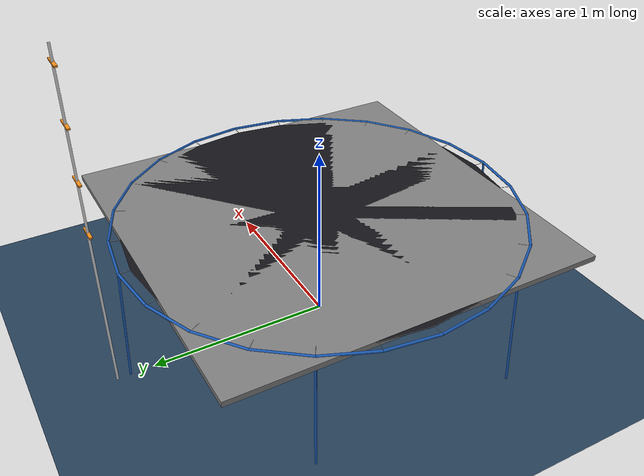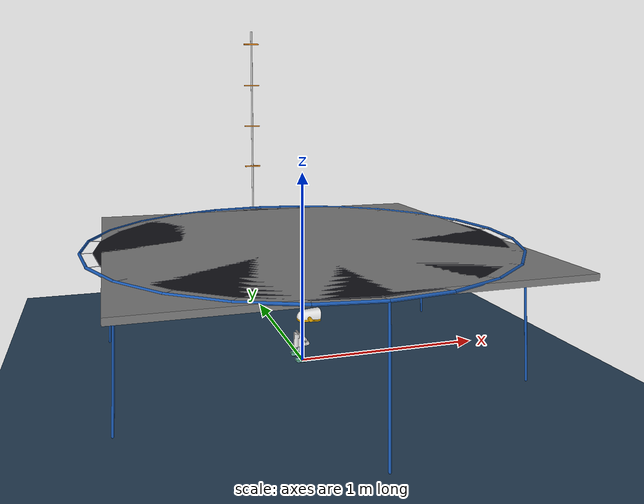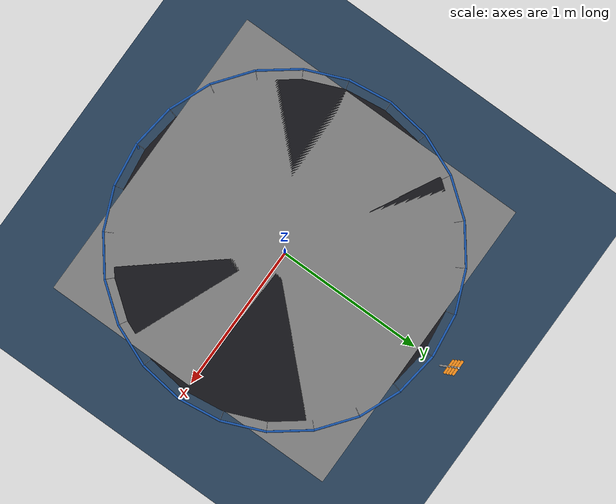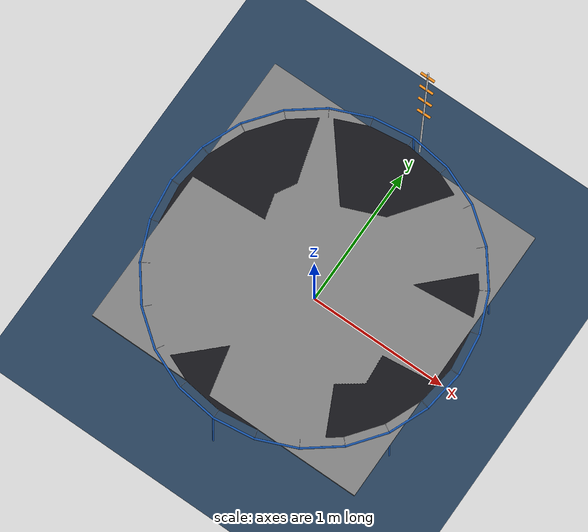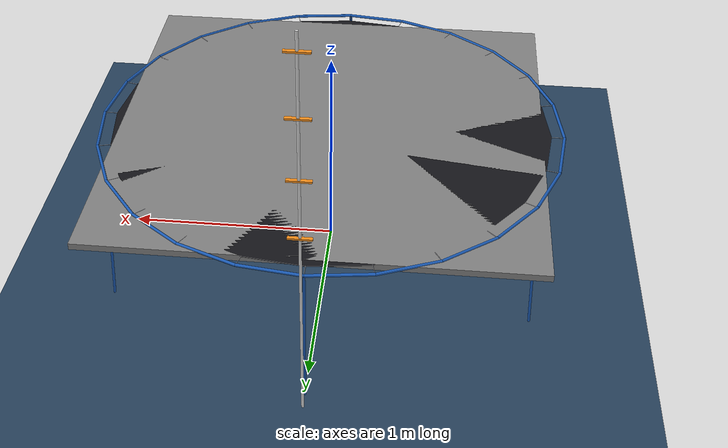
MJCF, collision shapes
<mujoco model="scene_trampoline">
    <!-- GENERATED by src/microduck_lab/tasks/trampoline/world.py (write_scene); do not edit.
         Stiffness and damping of bed_slide are set at load time from sag_mm and bounce. -->
    <include file="robot_allcollisions_boardfeet.xml" />

    <visual>
        <headlight diffuse="0.6 0.6 0.6" ambient="0.3 0.3 0.3" specular="0 0 0" />
        <rgba haze="0.15 0.25 0.35 1" />
        <global azimuth="160" elevation="-20" />
    </visual>

    <asset>
        <texture type="skybox" builtin="gradient" rgb1="0.3 0.5 0.7" rgb2="0 0 0" width="512" height="3072" />
        <texture type="2d" name="groundplane" builtin="checker" mark="edge" rgb1="0.2 0.3 0.4"
            rgb2="0.1 0.2 0.3" markrgb="0.8 0.8 0.8" width="300" height="300" />
        <material name="groundplane" texture="groundplane" texuniform="true" texrepeat="5 5" reflectance="0.2" />
    </asset>

    <worldbody>
        <light pos="0 0 3.5" dir="0 0 -1" directional="true" />
        <geom name="floor" size="0 0 0.05" pos="0 0 0" type="plane" material="groundplane" />
        <geom type="capsule" fromto="1.1000 0.0000 0.65 1.0625 0.2847 0.65" size="0.007" contype="0" conaffinity="0" rgba="0.10 0.35 0.70 1"/>
        <geom type="capsule" fromto="1.0625 0.2847 0.65 0.9526 0.5500 0.65" size="0.007" contype="0" conaffinity="0" rgba="0.10 0.35 0.70 1"/>
        <geom type="capsule" fromto="0.9526 0.5500 0.65 0.7778 0.7778 0.65" size="0.007" contype="0" conaffinity="0" rgba="0.10 0.35 0.70 1"/>
        <geom type="capsule" fromto="0.7778 0.7778 0.65 0.5500 0.9526 0.65" size="0.007" contype="0" conaffinity="0" rgba="0.10 0.35 0.70 1"/>
        <geom type="capsule" fromto="0.5500 0.9526 0.65 0.2847 1.0625 0.65" size="0.007" contype="0" conaffinity="0" rgba="0.10 0.35 0.70 1"/>
        <geom type="capsule" fromto="0.2847 1.0625 0.65 0.0000 1.1000 0.65" size="0.007" contype="0" conaffinity="0" rgba="0.10 0.35 0.70 1"/>
        <geom type="capsule" fromto="0.0000 1.1000 0.65 -0.2847 1.0625 0.65" size="0.007" contype="0" conaffinity="0" rgba="0.10 0.35 0.70 1"/>
        <geom type="capsule" fromto="-0.2847 1.0625 0.65 -0.5500 0.9526 0.65" size="0.007" contype="0" conaffinity="0" rgba="0.10 0.35 0.70 1"/>
        <geom type="capsule" fromto="-0.5500 0.9526 0.65 -0.7778 0.7778 0.65" size="0.007" contype="0" conaffinity="0" rgba="0.10 0.35 0.70 1"/>
        <geom type="capsule" fromto="-0.7778 0.7778 0.65 -0.9526 0.5500 0.65" size="0.007" contype="0" conaffinity="0" rgba="0.10 0.35 0.70 1"/>
        <geom type="capsule" fromto="-0.9526 0.5500 0.65 -1.0625 0.2847 0.65" size="0.007" contype="0" conaffinity="0" rgba="0.10 0.35 0.70 1"/>
        <geom type="capsule" fromto="-1.0625 0.2847 0.65 -1.1000 0.0000 0.65" size="0.007" contype="0" conaffinity="0" rgba="0.10 0.35 0.70 1"/>
        <geom type="capsule" fromto="-1.1000 0.0000 0.65 -1.0625 -0.2847 0.65" size="0.007" contype="0" conaffinity="0" rgba="0.10 0.35 0.70 1"/>
        <geom type="capsule" fromto="-1.0625 -0.2847 0.65 -0.9526 -0.5500 0.65" size="0.007" contype="0" conaffinity="0" rgba="0.10 0.35 0.70 1"/>
        <geom type="capsule" fromto="-0.9526 -0.5500 0.65 -0.7778 -0.7778 0.65" size="0.007" contype="0" conaffinity="0" rgba="0.10 0.35 0.70 1"/>
        <geom type="capsule" fromto="-0.7778 -0.7778 0.65 -0.5500 -0.9526 0.65" size="0.007" contype="0" conaffinity="0" rgba="0.10 0.35 0.70 1"/>
        <geom type="capsule" fromto="-0.5500 -0.9526 0.65 -0.2847 -1.0625 0.65" size="0.007" contype="0" conaffinity="0" rgba="0.10 0.35 0.70 1"/>
        <geom type="capsule" fromto="-0.2847 -1.0625 0.65 -0.0000 -1.1000 0.65" size="0.007" contype="0" conaffinity="0" rgba="0.10 0.35 0.70 1"/>
        <geom type="capsule" fromto="-0.0000 -1.1000 0.65 0.2847 -1.0625 0.65" size="0.007" contype="0" conaffinity="0" rgba="0.10 0.35 0.70 1"/>
        <geom type="capsule" fromto="0.2847 -1.0625 0.65 0.5500 -0.9526 0.65" size="0.007" contype="0" conaffinity="0" rgba="0.10 0.35 0.70 1"/>
        <geom type="capsule" fromto="0.5500 -0.9526 0.65 0.7778 -0.7778 0.65" size="0.007" contype="0" conaffinity="0" rgba="0.10 0.35 0.70 1"/>
        <geom type="capsule" fromto="0.7778 -0.7778 0.65 0.9526 -0.5500 0.65" size="0.007" contype="0" conaffinity="0" rgba="0.10 0.35 0.70 1"/>
        <geom type="capsule" fromto="0.9526 -0.5500 0.65 1.0625 -0.2847 0.65" size="0.007" contype="0" conaffinity="0" rgba="0.10 0.35 0.70 1"/>
        <geom type="capsule" fromto="1.0625 -0.2847 0.65 1.1000 -0.0000 0.65" size="0.007" contype="0" conaffinity="0" rgba="0.10 0.35 0.70 1"/>
        <geom type="capsule" fromto="0.9526 0.5500 0.65 0.9786 0.5650 0.004" size="0.006" contype="0" conaffinity="0" rgba="0.10 0.35 0.70 1"/>
        <geom type="capsule" fromto="0.0000 1.1000 0.65 0.0000 1.1300 0.004" size="0.006" contype="0" conaffinity="0" rgba="0.10 0.35 0.70 1"/>
        <geom type="capsule" fromto="-0.9526 0.5500 0.65 -0.9786 0.5650 0.004" size="0.006" contype="0" conaffinity="0" rgba="0.10 0.35 0.70 1"/>
        <geom type="capsule" fromto="-0.9526 -0.5500 0.65 -0.9786 -0.5650 0.004" size="0.006" contype="0" conaffinity="0" rgba="0.10 0.35 0.70 1"/>
        <geom type="capsule" fromto="-0.0000 -1.1000 0.65 -0.0000 -1.1300 0.004" size="0.006" contype="0" conaffinity="0" rgba="0.10 0.35 0.70 1"/>
        <geom type="capsule" fromto="0.9526 -0.5500 0.65 0.9786 -0.5650 0.004" size="0.006" contype="0" conaffinity="0" rgba="0.10 0.35 0.70 1"/>
        <site name="ring_0" pos="1.0940 0.0000 0.65" size="0.001"/>
        <site name="ring_1" pos="1.0567 0.2831 0.65" size="0.001"/>
        <site name="ring_2" pos="0.9474 0.5470 0.65" size="0.001"/>
        <site name="ring_3" pos="0.7736 0.7736 0.65" size="0.001"/>
        <site name="ring_4" pos="0.5470 0.9474 0.65" size="0.001"/>
        <site name="ring_5" pos="0.2831 1.0567 0.65" size="0.001"/>
        <site name="ring_6" pos="0.0000 1.0940 0.65" size="0.001"/>
        <site name="ring_7" pos="-0.2831 1.0567 0.65" size="0.001"/>
        <site name="ring_8" pos="-0.5470 0.9474 0.65" size="0.001"/>
        <site name="ring_9" pos="-0.7736 0.7736 0.65" size="0.001"/>
        <site name="ring_10" pos="-0.9474 0.5470 0.65" size="0.001"/>
        <site name="ring_11" pos="-1.0567 0.2831 0.65" size="0.001"/>
        <site name="ring_12" pos="-1.0940 0.0000 0.65" size="0.001"/>
        <site name="ring_13" pos="-1.0567 -0.2831 0.65" size="0.001"/>
        <site name="ring_14" pos="-0.9474 -0.5470 0.65" size="0.001"/>
        <site name="ring_15" pos="-0.7736 -0.7736 0.65" size="0.001"/>
        <site name="ring_16" pos="-0.5470 -0.9474 0.65" size="0.001"/>
        <site name="ring_17" pos="-0.2831 -1.0567 0.65" size="0.001"/>
        <site name="ring_18" pos="-0.0000 -1.0940 0.65" size="0.001"/>
        <site name="ring_19" pos="0.2831 -1.0567 0.65" size="0.001"/>
        <site name="ring_20" pos="0.5470 -0.9474 0.65" size="0.001"/>
        <site name="ring_21" pos="0.7736 -0.7736 0.65" size="0.001"/>
        <site name="ring_22" pos="0.9474 -0.5470 0.65" size="0.001"/>
        <site name="ring_23" pos="1.0567 -0.2831 0.65" size="0.001"/>
        <geom type="cylinder" fromto="0.0 1.2000000000000002 0 0.0 1.2000000000000002 1.820" size="0.006" contype="0" conaffinity="0" rgba="0.85 0.85 0.85 1"/>
        <geom type="box" pos="0.0 1.2000000000000002 0.922" size="0.05 0.008 0.004" contype="0" conaffinity="0" rgba="0.95 0.55 0.10 1"/>
        <geom type="box" pos="0.0 1.2000000000000002 1.194" size="0.05 0.008 0.004" contype="0" conaffinity="0" rgba="0.95 0.55 0.10 1"/>
        <geom type="box" pos="0.0 1.2000000000000002 1.466" size="0.05 0.008 0.004" contype="0" conaffinity="0" rgba="0.95 0.55 0.10 1"/>
        <geom type="box" pos="0.0 1.2000000000000002 1.738" size="0.05 0.008 0.004" contype="0" conaffinity="0" rgba="0.95 0.55 0.10 1"/>
        <body name="bed" pos="0 0 0.65" gravcomp="1">
            <joint name="bed_slide" type="slide" axis="0 0 1" limited="true" range="-0.6 0.1" />
            <inertial pos="0 0 -0.004" mass="0.03" diaginertia="2e-4 2e-4 4e-4" />
            <geom name="bed" type="box" size="1.0 1.0 0.015" pos="0 0 -0.015" group="3"
                friction="1 0.005 0.0001" solref="0.002 1" solimp="0.99 0.999 0.001" priority="1" />
            <geom name="bed_visual" type="cylinder" size="1.04 0.002" pos="0 0 -0.002"
                contype="0" conaffinity="0" rgba="0.08 0.08 0.10 1" />
            <site name="edge_0" pos="1.0380 0.0000 0" size="0.001"/>
        <site name="edge_1" pos="1.0026 0.2687 0" size="0.001"/>
        <site name="edge_2" pos="0.8989 0.5190 0" size="0.001"/>
        <site name="edge_3" pos="0.7340 0.7340 0" size="0.001"/>
        <site name="edge_4" pos="0.5190 0.8989 0" size="0.001"/>
        <site name="edge_5" pos="0.2687 1.0026 0" size="0.001"/>
        <site name="edge_6" pos="0.0000 1.0380 0" size="0.001"/>
        <site name="edge_7" pos="-0.2687 1.0026 0" size="0.001"/>
        <site name="edge_8" pos="-0.5190 0.8989 0" size="0.001"/>
        <site name="edge_9" pos="-0.7340 0.7340 0" size="0.001"/>
        <site name="edge_10" pos="-0.8989 0.5190 0" size="0.001"/>
        <site name="edge_11" pos="-1.0026 0.2687 0" size="0.001"/>
        <site name="edge_12" pos="-1.0380 0.0000 0" size="0.001"/>
        <site name="edge_13" pos="-1.0026 -0.2687 0" size="0.001"/>
        <site name="edge_14" pos="-0.8989 -0.5190 0" size="0.001"/>
        <site name="edge_15" pos="-0.7340 -0.7340 0" size="0.001"/>
        <site name="edge_16" pos="-0.5190 -0.8989 0" size="0.001"/>
        <site name="edge_17" pos="-0.2687 -1.0026 0" size="0.001"/>
        <site name="edge_18" pos="-0.0000 -1.0380 0" size="0.001"/>
        <site name="edge_19" pos="0.2687 -1.0026 0" size="0.001"/>
        <site name="edge_20" pos="0.5190 -0.8989 0" size="0.001"/>
        <site name="edge_21" pos="0.7340 -0.7340 0" size="0.001"/>
        <site name="edge_22" pos="0.8989 -0.5190 0" size="0.001"/>
        <site name="edge_23" pos="1.0026 -0.2687 0" size="0.001"/>
        </body>
    </worldbody>

    <tendon>
        <spatial width="0.0012" rgba="0.75 0.75 0.78 1"><site site="ring_0"/><site site="edge_0"/></spatial>
        <spatial width="0.0012" rgba="0.75 0.75 0.78 1"><site site="ring_1"/><site site="edge_1"/></spatial>
        <spatial width="0.0012" rgba="0.75 0.75 0.78 1"><site site="ring_2"/><site site="edge_2"/></spatial>
        <spatial width="0.0012" rgba="0.75 0.75 0.78 1"><site site="ring_3"/><site site="edge_3"/></spatial>
        <spatial width="0.0012" rgba="0.75 0.75 0.78 1"><site site="ring_4"/><site site="edge_4"/></spatial>
        <spatial width="0.0012" rgba="0.75 0.75 0.78 1"><site site="ring_5"/><site site="edge_5"/></spatial>
        <spatial width="0.0012" rgba="0.75 0.75 0.78 1"><site site="ring_6"/><site site="edge_6"/></spatial>
        <spatial width="0.0012" rgba="0.75 0.75 0.78 1"><site site="ring_7"/><site site="edge_7"/></spatial>
        <spatial width="0.0012" rgba="0.75 0.75 0.78 1"><site site="ring_8"/><site site="edge_8"/></spatial>
        <spatial width="0.0012" rgba="0.75 0.75 0.78 1"><site site="ring_9"/><site site="edge_9"/></spatial>
        <spatial width="0.0012" rgba="0.75 0.75 0.78 1"><site site="ring_10"/><site site="edge_10"/></spatial>
        <spatial width="0.0012" rgba="0.75 0.75 0.78 1"><site site="ring_11"/><site site="edge_11"/></spatial>
        <spatial width="0.0012" rgba="0.75 0.75 0.78 1"><site site="ring_12"/><site site="edge_12"/></spatial>
        <spatial width="0.0012" rgba="0.75 0.75 0.78 1"><site site="ring_13"/><site site="edge_13"/></spatial>
        <spatial width="0.0012" rgba="0.75 0.75 0.78 1"><site site="ring_14"/><site site="edge_14"/></spatial>
        <spatial width="0.0012" rgba="0.75 0.75 0.78 1"><site site="ring_15"/><site site="edge_15"/></spatial>
        <spatial width="0.0012" rgba="0.75 0.75 0.78 1"><site site="ring_16"/><site site="edge_16"/></spatial>
        <spatial width="0.0012" rgba="0.75 0.75 0.78 1"><site site="ring_17"/><site site="edge_17"/></spatial>
        <spatial width="0.0012" rgba="0.75 0.75 0.78 1"><site site="ring_18"/><site site="edge_18"/></spatial>
        <spatial width="0.0012" rgba="0.75 0.75 0.78 1"><site site="ring_19"/><site site="edge_19"/></spatial>
        <spatial width="0.0012" rgba="0.75 0.75 0.78 1"><site site="ring_20"/><site site="edge_20"/></spatial>
        <spatial width="0.0012" rgba="0.75 0.75 0.78 1"><site site="ring_21"/><site site="edge_21"/></spatial>
        <spatial width="0.0012" rgba="0.75 0.75 0.78 1"><site site="ring_22"/><site site="edge_22"/></spatial>
        <spatial width="0.0012" rgba="0.75 0.75 0.78 1"><site site="ring_23"/><site site="edge_23"/></spatial>
    </tendon>

    <contact>
        <exclude body1="world" body2="bed" />
        <exclude body1="ankle_left" body2="bed" />
        <exclude body1="ankle_right" body2="bed" />
        <pair geom1="left_foot_box" geom2="bed" friction="1 1 0.005 0.0001 0.0001" solref="0.002 1" solimp="0.99 0.999 0.001" />
        <pair geom1="right_foot_box" geom2="bed" friction="1 1 0.005 0.0001 0.0001" solref="0.002 1" solimp="0.99 0.999 0.001" />
    </contact>
</mujoco>

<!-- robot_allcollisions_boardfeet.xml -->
<!-- Generated using onshape-to-robot -->
<!-- Onshape https://cad.onshape.com/documents/804927696f06d877f3f1803e/w/5b75db19292e71970de02dee/e/ef6e972847fec8d82570b35e -->
<!-- GENERATED by scripts/task_balance_board.py (ensure_robot_variant) from robot_allcollisions.xml: adds left_foot_box / right_foot_box; do not edit. -->
<mujoco model="microduck">
  <compiler angle="radian" meshdir="../../mjlab_microduck/robot/microduck/assets" autolimits="true"/>
  <default>
    <default class="microduck">
      <joint frictionloss="0.1" armature="0.005"/>
      <position kp="50" dampratio="1"/>
      <default class="visual">
        <geom type="mesh" contype="0" conaffinity="0" group="2"/>
      </default>
      <default class="collision">
        <geom group="3"/>
      </default>
    </default>
  </default>
  <!-- Additional joints_properties.xml -->
  <default>
    <default class="perfect_actuator">
      <geom contype="0" conaffinity="0"/>
      <joint damping="0.15" frictionloss="0.1" armature="0.001"/>
      <position kp="10.0" kv="0.1" forcerange="-20.0 20.0"/>
    </default>
    <default class="chosen_actuator_old">
      <geom contype="0" conaffinity="0"/>
      <joint damping="0.048" frictionloss="0.006" armature="0.002"/>
      <position kp="0.52" kv="0.0" forcerange="-0.91 0.91" ctrlrange="-10.0 10.0"/>
    </default>
    <default class="chosen_actuator_new">
      <!-- removing contaminated data -->
      <geom contype="0" conaffinity="0"/>
      <joint damping="0.041" frictionloss="0.032" armature="0.002"/>
      <position kp="0.386" kv="0.0" forcerange="-0.67 0.67" ctrlrange="-10.0 10.0"/>
    </default>
    <default class="chosen_actuator_antoine">
      <geom contype="0" conaffinity="0"/>
      <joint damping="0.044" frictionloss="0.013" armature="0.0017"/>
      <position kp="0.43" kv="0.0" forcerange="-0.75 0.75" ctrlrange="-10.0 10.0"/>
    </default>
    <default class="chosen_actuator">
      <!-- marc -->
      <geom contype="0" conaffinity="0"/>
      <joint damping="0.053" frictionloss="0.0048" armature="0.0018"/>
      <!-- 200 kp -->
      <position kp="0.55" kv="0.0" forcerange="-0.96 0.96" ctrlrange="-10.0 10.0"/>
      <!-- 125 kp -->
    </default>
    <default class="passive_wheel">
      <geom contype="0" conaffinity="0"/>
      <joint damping="0.0" frictionloss="0.0" armature="0.0001"/>
    </default>
    <default class="passive_joint">
      <geom contype="0" conaffinity="0"/>
      <joint damping="0.0" frictionloss="0.0" armature="0.0001"/>
    </default>
  </default>
  <!-- Additional sensors.xml -->
  <sensor>
    <framequat name="orientation" objtype="site" noise="0.001" objname="imu"/>
    <gyro name="angular-velocity" site="imu" noise="0.005"/>
    <gyro name="imu_ang_vel" site="imu"/>
    <velocimeter name="imu_lin_vel" site="imu"/>
    <accelerometer name="imu_accel" site="imu"/>
    <subtreeangmom name="root_angmom" body="trunk_base"/>
  </sensor>
  <!-- Additional additional.xml -->
  <default>
    <default class="self_collision_only">
      <geom group="3" contype="2" conaffinity="2"/>
    </default>
    <equality solref="0.002 1" solimp="0.99 0.999 0.0005 0.5 2"/>
  </default>
  <!-- Jaw collision mesh overlaps the bottom head shell by ~2cm because the closed -->
  <!-- loop linkage positions it inside the head. Without these excludes the -->
  <!-- self-collision sensor reports a constant 2 contacts, giving a -->
  <!-- permanent ~-2.0 reward penalty in the standup env. -->
  <worldbody>
    <!-- Link trunk_base -->
    <body name="trunk_base" pos="0 0 0.12" quat="1 0 0 0" childclass="microduck">
      <freejoint name="trunk_base_freejoint"/>
      <inertial pos="-0.0226332 -2.70828e-05 0.00280064" mass="0.199224" fullinertia="0.000123975 0.000145931 0.000115351 7.1651e-08 -2.06915e-05 1.32429e-07"/>
      <!-- Part seeed_bearing__configuration__22x16x4 -->
      <geom type="mesh" class="visual" pos="0.006 0.0175 -0.005" quat="1 -0 -0 0" mesh="seeed_bearing__configuration__22x16x4" material="seeed_bearing__configuration__22x16x4_material"/>
      <!-- Part right_shell -->
      <geom type="mesh" class="visual" pos="0.004 -0.0005 -0.0175" quat="0.707107 -0 -0 0.707107" mesh="right_shell" material="right_shell_material"/>
      <!-- Part banana_pcb_locker -->
      <geom type="mesh" class="visual" pos="0.0042 -0 -0.0175215" quat="0.707107 -0 0 0.707107" mesh="banana_pcb_locker" material="banana_pcb_locker_material"/>
      <!-- Part trunk_base -->
      <geom type="mesh" class="visual" pos="0.004 -0 -0.0175" quat="0.707107 -0 -0 0.707107" mesh="trunk_base" material="trunk_base_material"/>
      <!-- Part xl330 -->
      <geom type="mesh" class="visual" pos="0.006 0.0175 0.0115" quat="0 0.707107 -0 0.707107" mesh="xl330" material="xl330_material"/>
      <!-- Part power_support -->
      <geom type="mesh" class="visual" pos="0.004 -0 -0.0175215" quat="0.707107 -0 0 0.707107" mesh="power_support" material="power_support_material"/>
      <geom type="mesh" class="self_collision_only" pos="0.004 -0 -0.0175215" quat="0.707107 -0 0 0.707107" mesh="power_support" material="power_support_material"/>
      <!-- Part np_f970 -->
      <geom type="mesh" class="visual" pos="-0.0359693 0 -0.00385049" quat="0.00617059 0.70708 -0.70708 -0.00617059" mesh="np_f970" material="np_f970_material"/>
      <geom type="mesh" class="collision" pos="-0.0359693 0 -0.00385049" quat="0.00617059 0.70708 -0.70708 -0.00617059" mesh="np_f970" material="np_f970_material"/>
      <!-- Part xl330_2 -->
      <geom type="mesh" class="visual" pos="0.006 -0.0175 0.0115" quat="0 0.707107 -0 0.707107" mesh="xl330" material="xl330_material"/>
      <!-- Part left_shell -->
      <geom type="mesh" class="visual" pos="0.004 -0 -0.0175785" quat="0.707107 0 -0 0.707107" mesh="left_shell" material="left_shell_material"/>
      <!-- Part seeed_bearing__configuration__22x16x4_2 -->
      <geom type="mesh" class="visual" pos="0.006 -0.0175 -0.005" quat="1 -0 -0 0" mesh="seeed_bearing__configuration__22x16x4" material="seeed_bearing__configuration__22x16x4_material"/>
      <!-- Frame imu -->
      <site group="3" name="imu" pos="-0.021 6.64098e-05 -0.0146984" quat="1 -0 -0 0"/>
      <!-- Link yaw2roll -->
      <body name="yaw2roll" pos="0.006 0.0175 -0.005" quat="0 -0.707107 -0.707107 -0">
        <!-- Joint from trunk_base to yaw2roll -->
        <joint axis="0 0 1" name="left_hip_yaw" type="hinge" range="-0.4363323129985824 0.5235987755982988" class="chosen_actuator"/>
        <inertial pos="-8.8e-11 0.00099414 0.0168917" mass="0.0230406" fullinertia="4.1964e-06 3.41752e-06 2.3265e-06 -0 -0 -5.0881e-08"/>
        <!-- Part yaw2roll -->
        <geom type="mesh" class="visual" pos="-0.0175 -0.002 0.0125" quat="0 1 0 0" mesh="yaw2roll" material="yaw2roll_material"/>
        <!-- Part xl330_3 -->
        <geom type="mesh" class="visual" pos="-0 0 0.0125" quat="0 -0.707107 0.707107 -0" mesh="xl330" material="xl330_material"/>
        <!-- Part seeed_bearing__configuration__22x16x4_3 -->
        <geom type="mesh" class="visual" pos="-0 0.0165 0.0125" quat="0.5 0.5 0.5 -0.5" mesh="seeed_bearing__configuration__22x16x4" material="seeed_bearing__configuration__22x16x4_material"/>
        <!-- Part bearing_roll -->
        <geom type="mesh" class="visual" pos="-0.0175 -0.002 0.0125" quat="0 -1 -0 -0" mesh="bearing_roll" material="bearing_roll_material"/>
        <!-- Link hip_l -->
        <body name="hip_l" pos="0 0.0165 0.0125" quat="0.707107 -0.707107 -0 -0">
          <!-- Joint from yaw2roll to hip_l -->
          <joint axis="0 0 1" name="left_hip_roll" type="hinge" range="-0.3839724354387525 0.3839724354387525" class="chosen_actuator"/>
          <inertial pos="0.014815 1.6179e-08 -0.00829992" mass="0.00618934" fullinertia="8.60626e-07 1.15753e-06 6.51588e-07 1e-12 3.89882e-07 -1e-12"/>
          <!-- Part seeed_bearing__configuration__22x16x4_4 -->
          <geom type="mesh" class="visual" pos="0.021 0 -0.0185" quat="0.5 0.5 0.5 0.5" mesh="seeed_bearing__configuration__22x16x4" material="seeed_bearing__configuration__22x16x4_material"/>
          <!-- Part hip_l -->
          <geom type="mesh" class="visual" pos="-0.0175 0 -0.0185" quat="0.707107 -0.707107 0 -0" mesh="hip_l" material="hip_l_material"/>
          <geom type="mesh" class="collision" pos="-0.0175 0 -0.0185" quat="0.707107 -0.707107 0 -0" mesh="hip_l" material="hip_l_material"/>
          <!-- Link upper_leg_left -->
          <body name="upper_leg_left" pos="0.025 0 -0.0185" quat="0.5 -0.5 0.5 -0.5">
            <!-- Joint from hip_l to upper_leg_left -->
            <joint axis="0 0 1" name="left_hip_pitch" type="hinge" range="-1.570796326795005 1.5707963267947882" class="chosen_actuator"/>
            <inertial pos="0.006766 0.0228838 0.0134531" mass="0.0482067" fullinertia="1.68753e-05 1.03691e-05 1.98269e-05 -4.41852e-06 2.27982e-07 3.89298e-07"/>
            <!-- Part upper_leg_left -->
            <geom type="mesh" class="visual" pos="-0 -0 -0.0425" quat="0.5 -0.5 -0.5 -0.5" mesh="upper_leg_left" material="upper_leg_left_material"/>
            <!-- Part xl330_4 -->
            <geom type="mesh" class="visual" pos="0.022 0.0357771 0.0125" quat="0 -0.707107 -0 -0.707107" mesh="xl330" material="xl330_material"/>
            <!-- Part upper_leg_rigidity_plate -->
            <geom type="mesh" class="visual" pos="0 -0 -0.0425" quat="0.5 -0.5 -0.5 -0.5" mesh="upper_leg_rigidity_plate" material="upper_leg_rigidity_plate_material"/>
            <!-- Part seeed_bearing__configuration__22x16x4_5 -->
            <geom type="mesh" class="visual" pos="0.022 0.0357771 -0.004" quat="0 0 0 1" mesh="seeed_bearing__configuration__22x16x4" material="seeed_bearing__configuration__22x16x4_material"/>
            <!-- Part xl330_5 -->
            <geom type="mesh" class="visual" pos="-0 -0 0.0125" quat="0.5 0.5 -0.5 0.5" mesh="xl330" material="xl330_material"/>
            <!-- Link leg -->
            <body name="leg" pos="0.022 0.0357771 -0.004" quat="0 0.707107 0.707107 0">
              <!-- Joint from upper_leg_left to leg -->
              <joint axis="0 0 1" name="left_knee" type="hinge" range="-1.570796326795012 1.570796326794781" class="chosen_actuator"/>
              <inertial pos="-1.52e-10 0.0318937 -0.00953505" mass="0.0215844" fullinertia="5.25056e-06 2.15507e-06 4.33925e-06 -1e-12 0 7.65005e-07"/>
              <!-- Part leg -->
              <geom type="mesh" class="visual" pos="-0.022 0.0357771 0.0385" quat="0.5 0.5 0.5 -0.5" mesh="leg" material="leg_material"/>
              <geom type="mesh" class="collision" pos="-0.022 0.0357771 0.0385" quat="0.5 0.5 0.5 -0.5" mesh="leg" material="leg_material"/>
              <!-- Part xl330_6 -->
              <geom type="mesh" class="visual" pos="0 0.042 -0.0115" quat="0.5 -0.5 -0.5 -0.5" mesh="xl330" material="xl330_material"/>
              <!-- Link ankle_left -->
              <body name="ankle_left" pos="0 0.042 -0.026" quat="0 1 -0 0">
                <!-- Joint from leg to ankle_left -->
                <joint axis="0 0 1" name="left_ankle" type="hinge" range="-1.5707963267949019 1.5707963267948912" class="chosen_actuator"/>
                <inertial pos="-0.00615738 -0.0137483 -0.0156586" mass="0.0300246" fullinertia="5.91525e-06 1.11534e-05 7.74015e-06 -2.0535e-07 8.2152e-08 5.6714e-08"/>
                <!-- Part sole_left -->
                <geom type="mesh" class="visual" pos="-0.022 0.00622291 -0.0647" quat="0.5 -0.5 -0.5 -0.5" mesh="sole_left" material="sole_left_material"/>
                <geom type="mesh" name="left_foot_collision" class="collision" pos="-0.022 0.00622291 -0.0647" quat="0.5 -0.5 -0.5 -0.5" mesh="sole_left" material="sole_left_material"/>
                <geom name="left_foot_box" type="box" size="0.0228 0.0170 0.0030" pos="-0.00699 -0.02088 -0.01430" quat="0.000000 0.000000 0.737289 0.675578" contype="0" conaffinity="0" group="3" rgba="0.2 0.8 0.2 0.4"/>
                <!-- Part foot_left -->
                <geom type="mesh" class="visual" pos="-0.022 0.00622291 -0.0647" quat="0.5 -0.5 -0.5 -0.5" mesh="foot_left" material="foot_left_material"/>
                <!-- Part seeed_bearing__configuration_default -->
                <geom type="mesh" class="visual" pos="0 0 -0.0322" quat="0 0 -0 1" mesh="seeed_bearing__configuration_default" material="seeed_bearing__configuration_default_material"/>
                <!-- Part ankle_left -->
                <geom type="mesh" class="visual" pos="-0.022 0.00622291 -0.0647" quat="0.5 -0.5 -0.5 -0.5" mesh="ankle_left" material="ankle_left_material"/>
                <!-- Frame left_foot -->
                <site group="3" name="left_foot" pos="-0 -0.0238146 -0.0140852" quat="0 0 0.707107 0.707107"/>
              </body>
            </body>
          </body>
        </body>
      </body>
      <!-- Link neck -->
      <body name="neck" pos="0.026 0.0145 0.0324215" quat="0 0 0.707107 -0.707107">
        <!-- Joint from trunk_base to neck -->
        <joint axis="0 0 1" name="neck_pitch" type="hinge" range="-1.5707963267948966 1.0471975511965976" class="chosen_actuator"/>
        <inertial pos="0 -0.025 0.0141665" mass="0.0368414" fullinertia="1.72925e-05 3.12694e-06 1.63707e-05 0 0 0"/>
        <!-- Part neck -->
        <geom type="mesh" class="visual" pos="0.022 0.05 0.028" quat="0.5 0.5 0.5 -0.5" mesh="neck" material="neck_material"/>
        <!-- Part xl330_7 -->
        <geom type="mesh" class="visual" pos="0 0 0.0145" quat="0.5 -0.5 -0.5 -0.5" mesh="xl330" material="xl330_material"/>
        <!-- Part xl330_8 -->
        <geom type="mesh" class="visual" pos="0 -0.05 0.0145" quat="0.5 0.5 -0.5 0.5" mesh="xl330" material="xl330_material"/>
        <!-- Part neck_2 -->
        <geom type="mesh" class="visual" pos="0.022 0.05 0.003" quat="0.5 0.5 0.5 -0.5" mesh="neck" material="neck_material"/>
        <!-- Link neck_pitch -->
        <body name="neck_pitch" pos="0 -0.05 -0" quat="0 1 0 0">
          <!-- Joint from neck to neck_pitch -->
          <joint axis="0 0 1" name="head_pitch" type="hinge" range="-1.5707963267948974 1.5707963267948957" class="chosen_actuator"/>
          <inertial pos="-6.533e-09 0.0116641 -0.0145" mass="0.00572" fullinertia="1.09186e-06 9.66855e-07 5.12111e-07 0 0 0"/>
          <!-- Part neck_pitch -->
          <geom type="mesh" class="visual" pos="-0 0.0287931 -0.0145" quat="0.5 -0.5 -0.5 -0.5" mesh="neck_pitch" material="neck_pitch_material"/>
          <!-- Part seeed_bearing__configuration__22x16x4_6 -->
          <geom type="mesh" class="visual" pos="-0 0.0207931 -0.0145" quat="0.707107 0.707107 0 0" mesh="seeed_bearing__configuration__22x16x4" material="seeed_bearing__configuration__22x16x4_material"/>
          <!-- Link yaw_roll_motion -->
          <body name="yaw_roll_motion" pos="-0 0.0186931 -0.0145" quat="0 0 -0.707107 -0.707107">
            <!-- Joint from neck_pitch to yaw_roll_motion -->
            <joint axis="0 0 1" name="head_yaw" type="hinge" range="-2.967059728390373 2.967059728390348" class="chosen_actuator"/>
            <inertial pos="-0.000166657 -0.00500964 0.0178065" mass="0.0486" fullinertia="6.97903e-06 8.10293e-06 9.57884e-06 3.21657e-07 -3.4797e-08 3.4295e-07"/>
            <!-- Part yaw_roll_motion -->
            <geom type="mesh" class="visual" pos="0 0 0.01" quat="0.707107 0 -0 0.707107" mesh="yaw_roll_motion" material="yaw_roll_motion_material"/>
            <!-- Part xl330_9 -->
            <geom type="mesh" class="visual" pos="0 0 0.0145" quat="0.5 -0.5 -0.5 -0.5" mesh="xl330" material="xl330_material"/>
            <!-- Part seeed_bearing__configuration__22x16x4_7 -->
            <geom type="mesh" class="visual" pos="-0.016 0 0.0145" quat="0.707107 -0 -0.707107 -0" mesh="seeed_bearing__configuration__22x16x4" material="seeed_bearing__configuration__22x16x4_material"/>
            <!-- Part seeed_bearing__configuration__22x16x4_8 -->
            <geom type="mesh" class="visual" pos="0.018 0 0.0145" quat="0.707107 -0 -0.707107 -0" mesh="seeed_bearing__configuration__22x16x4" material="seeed_bearing__configuration__22x16x4_material"/>
            <!-- Link jaw_soft -->
            <body name="jaw_soft" pos="-0.0179 0 0.0145" quat="0.707107 -0 -0.707107 -0">
              <!-- Joint from yaw_roll_motion to jaw_soft -->
              <joint axis="0 0 1" name="head_roll" type="hinge" range="-0.43633231299859127 0.4363323129985735" class="chosen_actuator"/>
              <inertial pos="0.00460523 0.00120047 -0.0324761" mass="0.188766" fullinertia="0.000320812 0.0002541 0.000149882 -6.32292e-07 6.57154e-06 4.18476e-06"/>
              <!-- Part lens -->
              <geom type="mesh" class="visual" pos="0.0155 -9.13778e-05 -0.05548" quat="0.5 -0.5 0.5 -0.5" mesh="lens" material="lens_material"/>
              <!-- Part face_part -->
              <geom type="mesh" class="visual" pos="-0.0045 -9.13778e-05 -0.0178" quat="0.5 0.5 0.5 0.5" mesh="face_part" material="face_part_material"/>
              <!-- Part xl330_10 -->
              <geom type="mesh" class="visual" pos="0.003 0.0255 -0.018" quat="0.707107 0 -0 -0.707107" mesh="xl330" material="xl330_material"/>
              <!-- Part jaw_soft -->
              <geom type="mesh" class="visual" pos="-0.0046 0 -0.0179996" quat="0.5 0.5 0.5 0.5" mesh="jaw_soft" material="jaw_soft_material"/>
              <!-- Part motor_support -->
              <geom type="mesh" class="visual" pos="-0.0045 0 -0.018" quat="0.5 0.5 0.5 0.5" mesh="motor_support" material="motor_support_material"/>
              <!-- Part top_head_shell -->
              <geom type="mesh" class="visual" pos="-0.0045 -0 -0.018" quat="0.5 0.5 0.5 0.5" mesh="top_head_shell" material="top_head_shell_material"/>
              <geom type="mesh" class="collision" pos="-0.0045 -0 -0.018" quat="0.5 0.5 0.5 0.5" mesh="top_head_shell" material="top_head_shell_material"/>
              <!-- Part xl330_11 -->
              <geom type="mesh" class="visual" pos="0 0 0.0145" quat="0.5 -0.5 -0.5 -0.5" mesh="xl330" material="xl330_material"/>
              <!-- Part seeed_bearing__configuration_default_2 -->
              <geom type="mesh" class="visual" pos="0.0032 -0.04 -0.018" quat="0.5 -0.5 0.5 0.5" mesh="seeed_bearing__configuration_default" material="seeed_bearing__configuration_default_material"/>
              <!-- Part elec_rpi_robot_hat_pcb -->
              <geom type="mesh" class="visual" pos="0.02694 0.0289936 -0.0519" quat="0.707107 0 0 -0.707107" mesh="elec_rpi_robot_hat_pcb" material="elec_rpi_robot_hat_pcb_material"/>
              <!-- Part soft_mouth_top -->
              <geom type="mesh" class="visual" pos="-0.00420071 1.7776e-08 -0.0180814" quat="0.5 0.5 0.5 0.5" mesh="soft_mouth_top" material="soft_mouth_top_material"/>
              <!-- Part noenoeil -->
              <geom type="mesh" class="visual" pos="-0.0045 -9.13778e-05 -0.0178" quat="0.5 0.5 0.5 0.5" mesh="noenoeil" material="noenoeil_material"/>
              <!-- Part jaw -->
              <geom type="mesh" class="visual" pos="-0.0045 0 -0.018" quat="0.5 0.5 0.5 0.5" mesh="jaw" material="jaw_material"/>
              <geom type="mesh" class="collision" pos="-0.0045 0 -0.018" quat="0.5 0.5 0.5 0.5" mesh="jaw" material="jaw_material"/>
              <!-- Part bottom_head_shell -->
              <geom type="mesh" class="visual" pos="-0.0043 -0 -0.018" quat="0.5 0.5 0.5 0.5" mesh="bottom_head_shell" material="bottom_head_shell_material"/>
              <geom type="mesh" class="collision" pos="-0.0043 -0 -0.018" quat="0.5 0.5 0.5 0.5" mesh="bottom_head_shell" material="bottom_head_shell_material"/>
              <!-- Part m12_lens_holder -->
              <geom type="mesh" class="visual" pos="0.0155 -9.13778e-05 -0.05558" quat="0.5 -0.5 0.5 -0.5" mesh="m12_lens_holder" material="m12_lens_holder_material"/>
              <!-- Part pcb__raspberry_pi_zero_2_w -->
              <geom type="mesh" class="visual" pos="0.015435 -1.13778e-05 -0.06001" quat="0.5 -0.5 -0.5 0.5" mesh="pcb__raspberry_pi_zero_2_w" material="pcb__raspberry_pi_zero_2_w_material"/>
              <!-- Part speaker -->
              <geom type="mesh" class="visual" pos="0.01 -0.016786 0.0260226" quat="0.5 0.5 0.5 0.5" mesh="speaker" material="speaker_material"/>
              <!-- Frame head_camera -->
              <site group="3" name="head_camera" pos="0.0155 -9.13778e-05 -0.0733" quat="0.707107 0 0.707107 -0"/>
              <camera name="head_camera" pos="0.0155 -9.13778e-05 -0.0733" quat="0 0 -1 0"/>
              <!-- Frame tof -->
              <site group="3" name="tof" pos="0.0135 0.0224086 -0.0733" quat="0.707107 0 0.707107 -0"/>
              <!-- Frame head_imu -->
              <site group="3" name="head_imu" pos="0.0152323 0.000111069 -0.05106" quat="1 0 0 -0"/>
              <!-- Frame mouth_tip -->
              <site group="3" name="mouth_tip" pos="-0.00809334 -0 -0.0777383" quat="0.704015 0 0.710185 -0"/>
            </body>
          </body>
        </body>
      </body>
      <!-- Link bearing_roll -->
      <body name="bearing_roll" pos="0.006 -0.0175 -0.005" quat="0 0.707107 0.707107 0">
        <!-- Joint from trunk_base to bearing_roll -->
        <joint axis="0 0 1" name="right_hip_yaw" type="hinge" range="-0.5235987755982988 0.4363323129985824" class="chosen_actuator"/>
        <inertial pos="-8.8e-11 0.00099414 0.0168917" mass="0.0230406" fullinertia="4.1964e-06 3.41752e-06 2.3265e-06 -0 -0 -5.0881e-08"/>
        <!-- Part yaw2roll_2 -->
        <geom type="mesh" class="visual" pos="-0.0175 -0.002 0.0125" quat="0 1 0 0" mesh="yaw2roll" material="yaw2roll_material"/>
        <!-- Part xl330_12 -->
        <geom type="mesh" class="visual" pos="-0 0 0.0125" quat="0 -0.707107 0.707107 -0" mesh="xl330" material="xl330_material"/>
        <!-- Part bearing_roll_2 -->
        <geom type="mesh" class="visual" pos="-0.0175 -0.002 0.0125" quat="0 -1 -0 -0" mesh="bearing_roll" material="bearing_roll_material"/>
        <!-- Part seeed_bearing__configuration__22x16x4_9 -->
        <geom type="mesh" class="visual" pos="-0 0.0165 0.0125" quat="0.5 0.5 0.5 -0.5" mesh="seeed_bearing__configuration__22x16x4" material="seeed_bearing__configuration__22x16x4_material"/>
        <!-- Link hip_l_2 -->
        <body name="hip_l_2" pos="-0 0.0165 0.0125" quat="0 -0 0.707107 0.707107">
          <!-- Joint from bearing_roll to hip_l_2 -->
          <joint axis="0 0 1" name="right_hip_roll" type="hinge" range="-0.3839724354387525 0.3839724354387525" class="chosen_actuator"/>
          <inertial pos="0.014815 1.6212e-08 -0.00829992" mass="0.00618934" fullinertia="8.60626e-07 1.15753e-06 6.51588e-07 1e-12 3.89882e-07 -1e-12"/>
          <!-- Part hip_l_2 -->
          <geom type="mesh" class="visual" pos="-0.0175 0 -0.0185" quat="0.707107 -0.707107 -0 -0" mesh="hip_l" material="hip_l_material"/>
          <geom type="mesh" class="collision" pos="-0.0175 0 -0.0185" quat="0.707107 -0.707107 -0 -0" mesh="hip_l" material="hip_l_material"/>
          <!-- Part seeed_bearing__configuration__22x16x4_10 -->
          <geom type="mesh" class="visual" pos="0.025 0 -0.0185" quat="0.5 0.5 -0.5 -0.5" mesh="seeed_bearing__configuration__22x16x4" material="seeed_bearing__configuration__22x16x4_material"/>
          <!-- Link upper_leg_right -->
          <body name="upper_leg_right" pos="0.025 0 -0.0185" quat="0.5 -0.5 0.5 -0.5">
            <!-- Joint from hip_l_2 to upper_leg_right -->
            <joint axis="0 0 1" name="right_hip_pitch" type="hinge" range="-1.5707963267949268 1.5707963267948664" class="chosen_actuator"/>
            <inertial pos="-0.006766 0.0228838 0.0134531" mass="0.0482067" fullinertia="1.68753e-05 1.03691e-05 1.98269e-05 4.41852e-06 -2.27982e-07 3.89298e-07"/>
            <!-- Part xl330_13 -->
            <geom type="mesh" class="visual" pos="-0.022 0.0357771 0.0125" quat="0.707107 -0 -0.707107 -0" mesh="xl330" material="xl330_material"/>
            <!-- Part seeed_bearing__configuration__22x16x4_11 -->
            <geom type="mesh" class="visual" pos="-0.022 0.0357771 0" quat="0 1 -0 -0" mesh="seeed_bearing__configuration__22x16x4" material="seeed_bearing__configuration__22x16x4_material"/>
            <!-- Part upper_leg_rigidity_plate_2 -->
            <geom type="mesh" class="visual" pos="0 0 0.0435" quat="0.5 -0.5 0.5 0.5" mesh="upper_leg_rigidity_plate" material="upper_leg_rigidity_plate_material"/>
            <!-- Part upper_leg_right -->
            <geom type="mesh" class="visual" pos="-0 0 -0.0425" quat="0.5 -0.5 0.5 0.5" mesh="upper_leg_right" material="upper_leg_right_material"/>
            <!-- Part xl330_14 -->
            <geom type="mesh" class="visual" pos="0 0 0.0125" quat="0.5 0.5 -0.5 0.5" mesh="xl330" material="xl330_material"/>
            <!-- Link leg_2 -->
            <body name="leg_2" pos="-0.022 0.0357771 -0.004" quat="0 1 -0 -0">
              <!-- Joint from upper_leg_right to leg_2 -->
              <joint axis="0 0 1" name="right_knee" type="hinge" range="-1.570796326794932 1.570796326794861" class="chosen_actuator"/>
              <inertial pos="-0.0318937 -1.52e-10 -0.00953505" mass="0.0215844" fullinertia="2.15507e-06 5.25056e-06 4.33925e-06 1e-12 -7.65005e-07 0"/>
              <!-- Part xl330_15 -->
              <geom type="mesh" class="visual" pos="-0.042 0 -0.0115" quat="0.707107 -0 -0.707107 -0" mesh="xl330" material="xl330_material"/>
              <!-- Part leg_2 -->
              <geom type="mesh" class="visual" pos="-0.0357771 -0.022 0.0385" quat="0.707107 0 0.707107 -0" mesh="leg" material="leg_material"/>
              <geom type="mesh" class="collision" pos="-0.0357771 -0.022 0.0385" quat="0.707107 0 0.707107 -0" mesh="leg" material="leg_material"/>
              <!-- Link ankle_right -->
              <body name="ankle_right" pos="-0.042 0 -0.026" quat="0 -0.707107 -0.707107 0">
                <!-- Joint from leg_2 to ankle_right -->
                <joint axis="0 0 1" name="right_ankle" type="hinge" range="-1.5707963267949054 1.5707963267948877" class="chosen_actuator"/>
                <inertial pos="0.00615539 -0.0137482 -0.0156566" mass="0.0300251" fullinertia="5.91534e-06 1.11534e-05 7.74016e-06 2.04877e-07 -8.247e-08 5.7017e-08"/>
                <!-- Part ankle_right -->
                <geom type="mesh" class="visual" pos="0.022 0.00622291 -0.0647" quat="0.5 -0.5 0.5 0.5" mesh="ankle_right" material="ankle_right_material"/>
                <!-- Part sole_right -->
                <geom type="mesh" class="visual" pos="0.022 0.00622291 -0.0647" quat="0.5 -0.5 0.5 0.5" mesh="sole_right" material="sole_right_material"/>
                <geom type="mesh" name="right_foot_collision" class="collision" pos="0.022 0.00622291 -0.0647" quat="0.5 -0.5 0.5 0.5" mesh="sole_right" material="sole_right_material"/>
                <geom name="right_foot_box" type="box" size="0.0228 0.0169 0.0030" pos="0.00699 -0.02087 -0.01424" quat="0.675578 -0.737289 -0.000000 0.000000" contype="0" conaffinity="0" group="3" rgba="0.2 0.8 0.2 0.4"/>
                <!-- Part seeed_bearing__configuration_default_3 -->
                <geom type="mesh" class="visual" pos="-0 0 -0.0292" quat="0 1 -0 -0" mesh="seeed_bearing__configuration_default" material="seeed_bearing__configuration_default_material"/>
                <!-- Part foot_right -->
                <geom type="mesh" class="visual" pos="0.022 0.00622291 -0.0647" quat="0.5 -0.5 0.5 0.5" mesh="foot_right" material="foot_right_material"/>
                <!-- Frame right_foot -->
                <site group="3" name="right_foot" pos="0 -0.0238146 -0.0140852" quat="0.707107 -0.707107 0 0"/>
              </body>
            </body>
          </body>
        </body>
      </body>
    </body>
  </worldbody>
  <asset>
    <mesh file="seeed_bearing__configuration__22x16x4.stl"/>
    <mesh file="sole_left.stl"/>
    <mesh file="yaw2roll.stl"/>
    <mesh file="sole_right.stl"/>
    <mesh file="leg.stl"/>
    <mesh file="xl330.stl"/>
    <mesh file="noenoeil.stl"/>
    <mesh file="pcb__raspberry_pi_zero_2_w.stl"/>
    <mesh file="neck_pitch.stl"/>
    <mesh file="foot_left.stl"/>
    <mesh file="ankle_left.stl"/>
    <mesh file="yaw_roll_motion.stl"/>
    <mesh file="left_shell.stl"/>
    <mesh file="m12_lens_holder.stl"/>
    <mesh file="jaw_soft.stl"/>
    <mesh file="elec_rpi_robot_hat_pcb.stl"/>
    <mesh file="top_head_shell.stl"/>
    <mesh file="lens.stl"/>
    <mesh file="bottom_head_shell.stl"/>
    <mesh file="motor_support.stl"/>
    <mesh file="neck.stl"/>
    <mesh file="np_f970.stl"/>
    <mesh file="upper_leg_rigidity_plate.stl"/>
    <mesh file="seeed_bearing__configuration_default.stl"/>
    <mesh file="soft_mouth_top.stl"/>
    <mesh file="trunk_base.stl"/>
    <mesh file="hip_l.stl"/>
    <mesh file="bearing_roll.stl"/>
    <mesh file="banana_pcb_locker.stl"/>
    <mesh file="speaker.stl"/>
    <mesh file="ankle_right.stl"/>
    <mesh file="upper_leg_right.stl"/>
    <mesh file="right_shell.stl"/>
    <mesh file="face_part.stl"/>
    <mesh file="foot_right.stl"/>
    <mesh file="power_support.stl"/>
    <mesh file="upper_leg_left.stl"/>
    <mesh file="jaw.stl"/>
    <material name="seeed_bearing__configuration__22x16x4_material" rgba="0.713725 0.760784 0.8 1"/>
    <material name="right_shell_material" rgba="0.8 0.8 0.8 1"/>
    <material name="banana_pcb_locker_material" rgba="0.647059 0.647059 0.647059 1"/>
    <material name="trunk_base_material" rgba="0.34902 0.376471 0.4 1"/>
    <material name="xl330_material" rgba="0.286275 0.286275 0.286275 1"/>
    <material name="power_support_material" rgba="0.901961 0.901961 0.901961 1"/>
    <material name="np_f970_material" rgba="0.901961 0.901961 0.901961 1"/>
    <material name="left_shell_material" rgba="0.8 0.8 0.8 1"/>
    <material name="yaw2roll_material" rgba="0.647059 0.647059 0.647059 1"/>
    <material name="bearing_roll_material" rgba="0.262745 0.282353 0.301961 1"/>
    <material name="hip_l_material" rgba="0.901961 0.901961 0.901961 1"/>
    <material name="upper_leg_left_material" rgba="0.866667 0.866667 0.866667 1"/>
    <material name="upper_leg_rigidity_plate_material" rgba="0.537255 0.854902 0.827451 1"/>
    <material name="leg_material" rgba="0.811765 0.858824 0.898039 1"/>
    <material name="sole_left_material" rgba="0.537255 0.854902 0.827451 1"/>
    <material name="foot_left_material" rgba="0.980392 0.713725 0.00392157 1"/>
    <material name="seeed_bearing__configuration_default_material" rgba="0.713725 0.760784 0.8 1"/>
    <material name="ankle_left_material" rgba="0.980392 0.713725 0.00392157 1"/>
    <material name="neck_material" rgba="0.8 0.8 0.8 1"/>
    <material name="neck_pitch_material" rgba="0.34902 0.376471 0.4 1"/>
    <material name="yaw_roll_motion_material" rgba="0.768627 0.886275 0.952941 1"/>
    <material name="lens_material" rgba="0.262745 0.282353 0.301961 1"/>
    <material name="face_part_material" rgba="0.34902 0.376471 0.4 1"/>
    <material name="jaw_soft_material" rgba="0.85098 0.756863 0.866667 1"/>
    <material name="motor_support_material" rgba="0.262745 0.282353 0.301961 1"/>
    <material name="top_head_shell_material" rgba="0.901961 0.901961 0.901961 1"/>
    <material name="elec_rpi_robot_hat_pcb_material" rgba="0.313725 0.486275 0.411765 1"/>
    <material name="soft_mouth_top_material" rgba="0.85098 0.756863 0.866667 1"/>
    <material name="noenoeil_material" rgba="0.262745 0.282353 0.301961 1"/>
    <material name="jaw_material" rgba="0.980392 0.713725 0.00392157 1"/>
    <material name="bottom_head_shell_material" rgba="0.980392 0.713725 0.00392157 1"/>
    <material name="m12_lens_holder_material" rgba="0.262745 0.282353 0.301961 1"/>
    <material name="pcb__raspberry_pi_zero_2_w_material" rgba="0.498039 0.498039 0.498039 1"/>
    <material name="speaker_material" rgba="0.294118 0.290196 0.290196 1"/>
    <material name="upper_leg_right_material" rgba="0.866667 0.866667 0.866667 1"/>
    <material name="ankle_right_material" rgba="0.980392 0.713725 0.00392157 1"/>
    <material name="sole_right_material" rgba="0.537255 0.854902 0.827451 1"/>
    <material name="foot_right_material" rgba="0.980392 0.713725 0.00392157 1"/>
  </asset>
  <actuator>
    <position class="chosen_actuator" name="left_hip_yaw" joint="left_hip_yaw"/>
    <position class="chosen_actuator" name="left_hip_roll" joint="left_hip_roll"/>
    <position class="chosen_actuator" name="left_hip_pitch" joint="left_hip_pitch"/>
    <position class="chosen_actuator" name="left_knee" joint="left_knee"/>
    <position class="chosen_actuator" name="left_ankle" joint="left_ankle"/>
    <position class="chosen_actuator" name="neck_pitch" joint="neck_pitch"/>
    <position class="chosen_actuator" name="head_pitch" joint="head_pitch"/>
    <position class="chosen_actuator" name="head_yaw" joint="head_yaw"/>
    <position class="chosen_actuator" name="head_roll" joint="head_roll"/>
    <position class="chosen_actuator" name="right_hip_yaw" joint="right_hip_yaw"/>
    <position class="chosen_actuator" name="right_hip_roll" joint="right_hip_roll"/>
    <position class="chosen_actuator" name="right_hip_pitch" joint="right_hip_pitch"/>
    <position class="chosen_actuator" name="right_knee" joint="right_knee"/>
    <position class="chosen_actuator" name="right_ankle" joint="right_ankle"/>
  </actuator>
  <equality/>
</mujoco>
